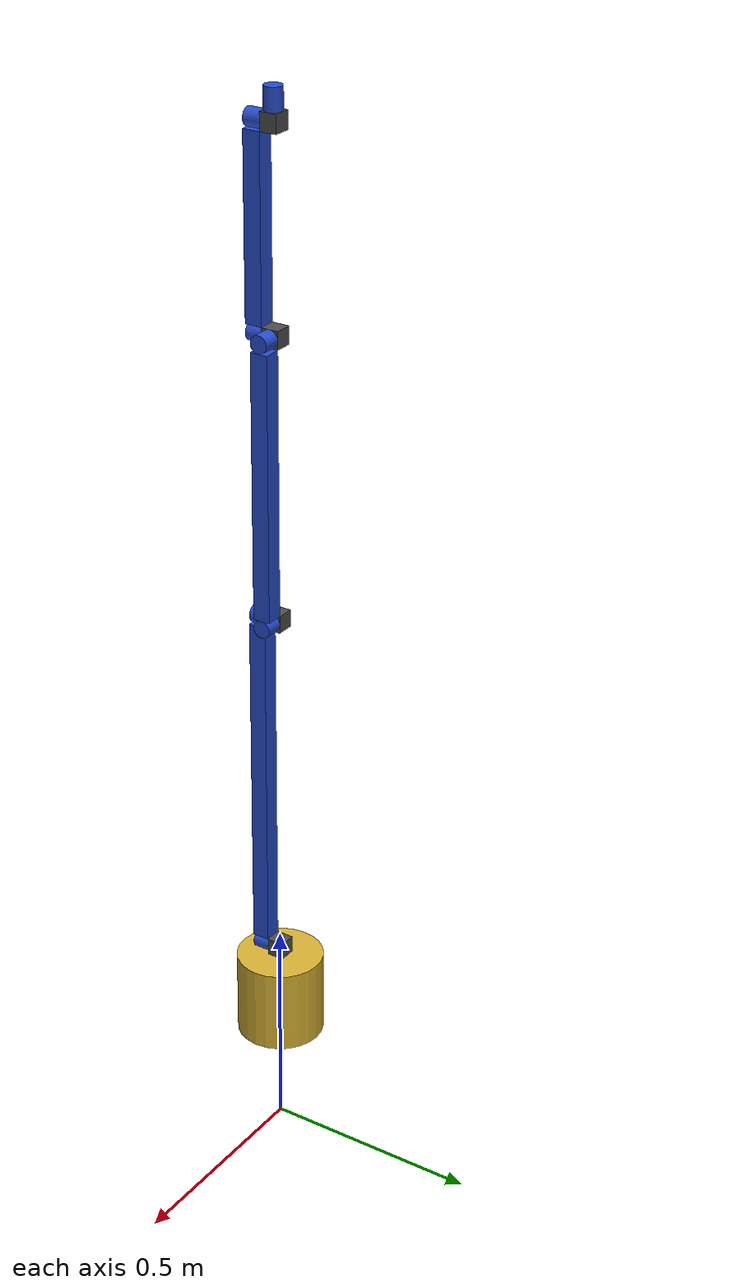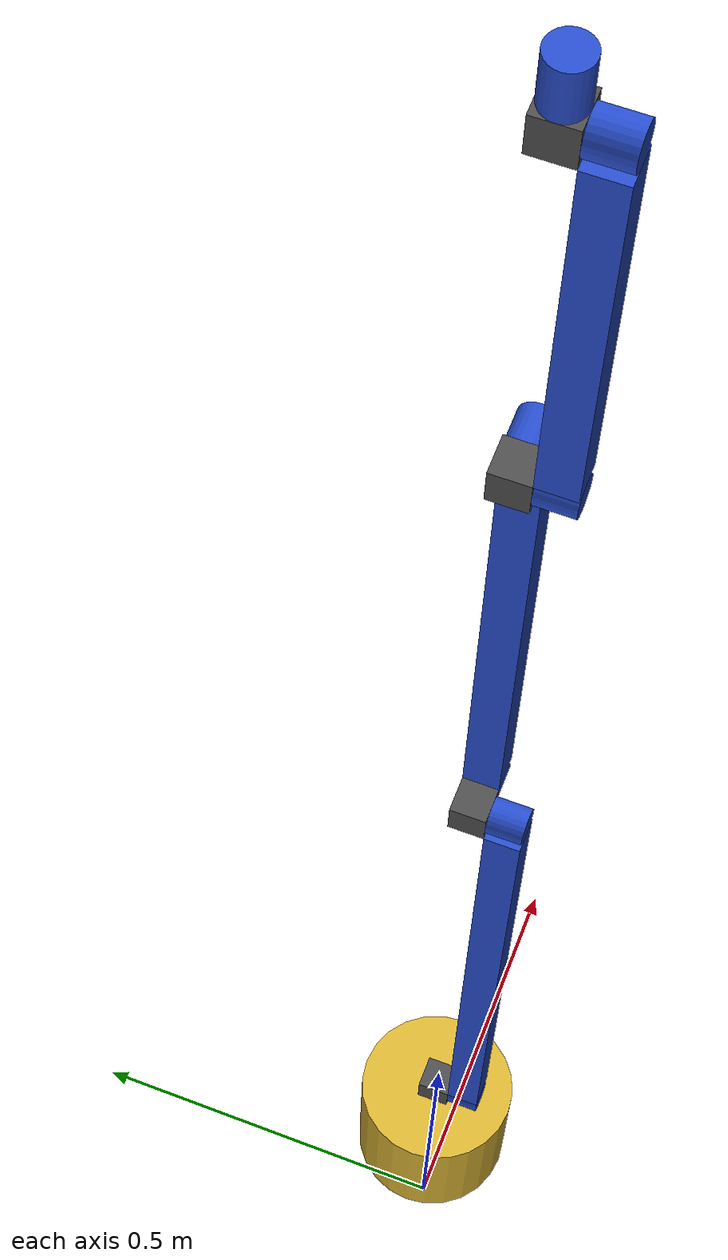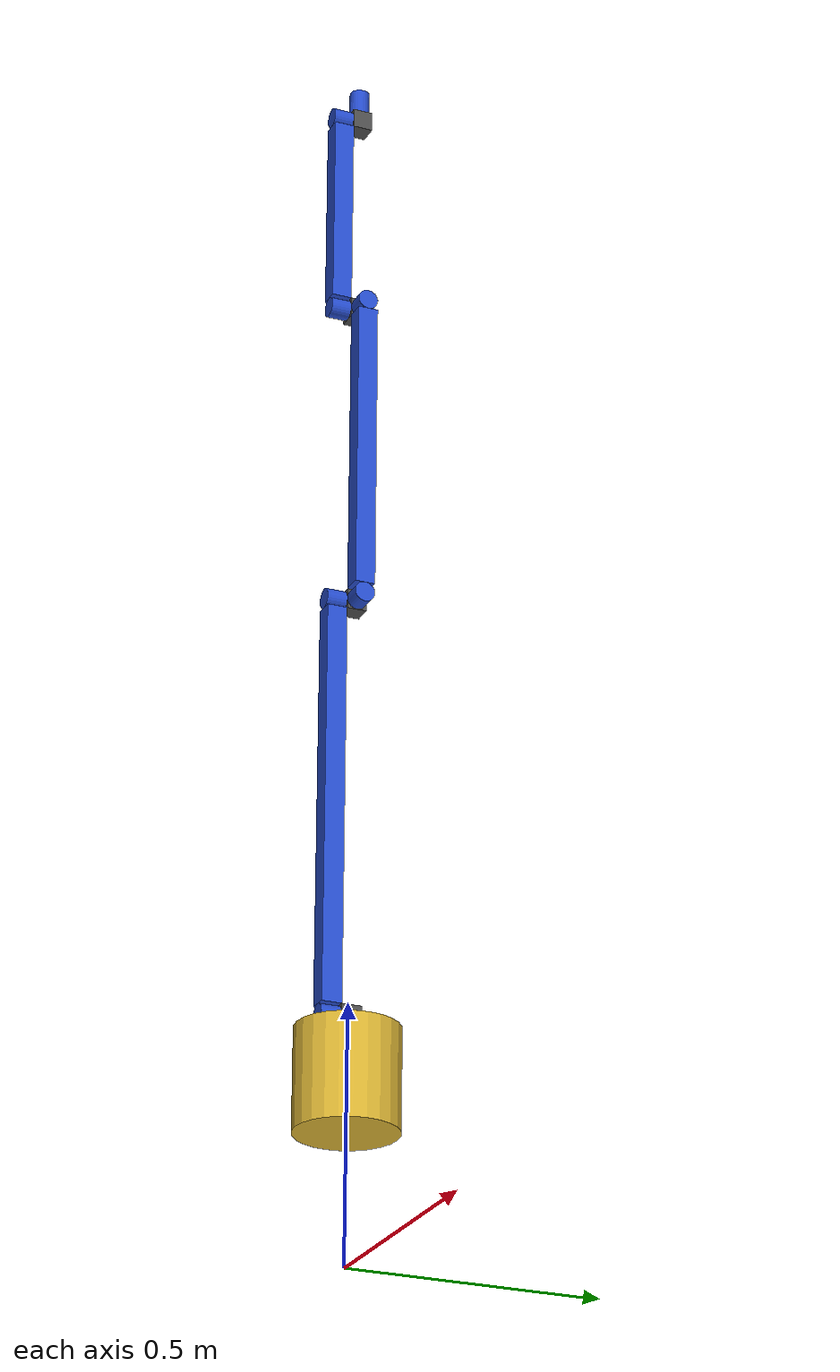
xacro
<?xml version="1.0"?>
<robot name="simplearm" xmlns:xacro="http://www.ros.org/wiki/xacro">
  <xacro:include filename="$(find schunk_description)/urdf/materials.urdf.xacro" />

  <!-- Base Link -->

  <!-- Used for fixing robot to Gazebo -->
  <link name="world"/>

  <link name="arm_base_link">
   <visual>
      <geometry>
        <cylinder length="0.2" radius="0.1"/>
      </geometry>
      <origin rpy="0 0 0" xyz="0 0 0"/>
      <material name="Schunk/DarkGolden"/>
    </visual>
    <collision>
      <geometry>
        <cylinder length="0.2" radius="0.1"/>
      </geometry>
    </collision>
    <inertial>
      <mass value="0.01"/>
      <origin rpy="0 0 0" xyz="0 0 0"/>
      <inertia ixx="0.001" ixy="0.0" ixz="0.0" iyy="0.001" iyz="0.0" izz="0.001"/>
    </inertial>
  </link>

  <!-- joint between base_link and lwa4p_extended_connector_link -->
  <joint name="arm_base_joint" type="fixed">
    <origin rpy="0 0 0" xyz="0 0 0.35"/>
    <parent link="world"/>
    <child link="arm_base_link"/>
  </joint>

  <!-- link 1 -->
  <link name="arm_1_link">
   <visual>
      <geometry>
        <box size="0.04 0.04 0.04"/>
      </geometry>
      <origin rpy="0 0 0" xyz="0 0 0"/>
      <material name="Schunk/DarkGrey"/>
    </visual>
    <collision>
      <geometry>
        <box size="0.04 0.04 0.04"/>
      </geometry>
    </collision>
    <inertial>
      <mass value="0.01"/>
      <origin rpy="0 0 0" xyz="0 0 0"/>
      <inertia ixx="0.001" ixy="0.0" ixz="0.0" iyy="0.001" iyz="0.0" izz="0.001"/>
    </inertial>

  </link>

  <!-- joint 1 between base_link and arm_1_link -->
  <joint name="arm_1_joint" type="revolute">
    <origin rpy="0 0 0" xyz="0 0 0.12"/>
    <parent link="arm_base_link"/>
    <child link="arm_1_link"/>
    <axis xyz="0 0 1"/>
    <limit effort="370" lower="-3.14" upper="3.14" velocity="1.26"/>
  </joint>

  <!-- link 2 -->
  <link name="arm_2_link">
   <visual>
      <geometry>
        <cylinder length="0.04" radius="0.02"/>
      </geometry>
      <origin rpy="1.57075 0 0" xyz="0 0 0"/>
      <material name="Schunk/Blue"/>
    </visual>
    <collision>
      <geometry>
        <cylinder length="0.04" radius="0.02"/>
      </geometry>
    </collision>
    <inertial>
      <mass value="0.01"/>
      <origin rpy="1.57075 0 0" xyz="0 0 0"/>
      <inertia ixx="0.001" ixy="0.0" ixz="0.0" iyy="0.001" iyz="0.0" izz="0.001"/>
    </inertial>

    <visual>
      <origin rpy="0 0 0" xyz="0 0 0.42"/>
      <geometry>
        <box size="0.04 0.04 0.8"/>
      </geometry>
      <material name="Schunk/Blue"/>
    </visual>
    <collision>
      <origin rpy="0 0 0" xyz="0 0 0.42"/>
      <geometry>
        <box size="0.04 0.04 0.6"/>
      </geometry>
    </collision>
   <inertial>
      <mass value="0.01"/>
      <origin rpy="0 0 0" xyz="0 0 0.42"/>
      <inertia ixx="0.001" ixy="0.0" ixz="0.0" iyy="0.001" iyz="0.0" izz="0.001"/>
    </inertial>

   <visual>
      <geometry>
        <cylinder length="0.04" radius="0.02"/>
      </geometry>
      <origin rpy="1.5707 0 0" xyz="0 0 0.84"/>
      <material name="Schunk/Blue"/>
    </visual>
    <collision>
      <geometry>
        <cylinder length="0.04" radius="0.02"/>
      </geometry>
    </collision>
    <inertial>
      <mass value="0.01"/>
      <origin rpy="0 1.5707 0" xyz="0 0 0.84"/>
      <inertia ixx="0.001" ixy="0.0" ixz="0.0" iyy="0.001" iyz="0.0" izz="0.001"/>
    </inertial>

  </link>
  <!-- joint 2 between arm_1_link and arm_2_link-->
  <joint name="arm_2_joint" type="revolute">
    <origin rpy="0 0 0" xyz="0 -0.04 0"/>
    <parent link="arm_1_link"/>
    <child link="arm_2_link"/>
    <axis xyz="0 1 0"/>
    <limit effort="370" lower="-1.57" upper="1.57" velocity="1.26"/>
    <safety_controller k_position="20" k_velocity="50" soft_lower_limit="${-6.28 + 0.01}" soft_upper_limit="${6.28 - 0.01}" />
  </joint>

  <!-- link 3 -->
  <link name="arm_3_link">
   <visual>
      <geometry>
        <box size="0.04 0.04 0.04"/>
      </geometry>
      <origin rpy="0 0 0" xyz="0 0 0"/>
      <material name="Schunk/DarkGrey"/>
    </visual>
    <collision>
      <geometry>
        <box size="0.04 0.04 0.04"/>
      </geometry>
    </collision>
    <inertial>
      <mass value="0.01"/>
      <origin rpy="0 0 0" xyz="0 0 0"/>
      <inertia ixx="0.001" ixy="0.0" ixz="0.0" iyy="0.001" iyz="0.0" izz="0.001"/>
    </inertial>

  </link>
  <!-- joint 3 between link 2 and link3 -->
  <joint name="arm_3_joint" type="revolute">
    <origin rpy="0 0 0" xyz="0 0.04 0.84"/>
    <parent link="arm_2_link"/>
    <child link="arm_3_link"/>
    <axis xyz="0 1 0"/>
    <limit effort="370" lower="-3.14" upper="3.14" velocity="1.26"/>
    <safety_controller k_position="20" k_velocity="50" soft_lower_limit="${-6.28 + 0.01}" soft_upper_limit="${6.28 - 0.01}" />
  </joint>

  <!-- link 4 -->
  <link name="arm_4_link">
   <visual>
      <geometry>
        <cylinder length="0.04" radius="0.02"/>
      </geometry>
      <origin rpy="0 1.57075 0" xyz="0 0 0"/>
      <material name="Schunk/Blue"/>
    </visual>
    <collision>
      <geometry>
        <cylinder length="0.04" radius="0.02"/>
      </geometry>
    </collision>
    <inertial>
      <mass value="0.01"/>
      <origin rpy="0 1.57075 0" xyz="0 0 0"/>
      <inertia ixx="0.001" ixy="0.0" ixz="0.0" iyy="0.001" iyz="0.0" izz="0.001"/>
    </inertial>

    <visual>
      <origin rpy="0 0 0" xyz="0 0 0.32"/>
      <geometry>
        <box size="0.04 0.04 0.6"/>
      </geometry>
      <material name="Schunk/Blue"/>
    </visual>
    <collision>
      <origin rpy="0 0 0" xyz="0 0 0.32"/>
      <geometry>
        <box size="0.04 0.04 0.6"/>
      </geometry>
    </collision>
    <inertial>
      <mass value="0.01"/>
      <origin rpy="0 0 0" xyz="0 0 0.32"/>
      <inertia ixx="0.001" ixy="0.0" ixz="0.0" iyy="0.001" iyz="0.0" izz="0.001"/>
    </inertial>

   <visual>
      <geometry>
        <cylinder length="0.04" radius="0.02"/>
      </geometry>
      <origin rpy="0 1.5707 0" xyz="0 0 0.64"/>
      <material name="Schunk/Blue"/>
    </visual>
    <collision>
      <geometry>
        <cylinder length="0.04" radius="0.02"/>
      </geometry>
    </collision>
    <inertial>
      <mass value="0.01"/>
      <origin rpy="0 1.5707 0" xyz="0 0 0.64"/>
      <inertia ixx="0.001" ixy="0.0" ixz="0.0" iyy="0.001" iyz="0.0" izz="0.001"/>
    </inertial>

  </link>
  <!-- joint 4 between arm_3_link and arm_4_link-->
  <joint name="arm_4_joint" type="revolute">
    <origin rpy="0 0 0" xyz="0.04 0.0 0.0"/>
    <parent link="arm_3_link"/>
    <child link="arm_4_link"/>
    <axis xyz="1 0 0"/>
    <limit effort="370" lower="-3.14" upper="3.14" velocity="1.26"/>
    <safety_controller k_position="20" k_velocity="50" soft_lower_limit="${-6.28 + 0.01}" soft_upper_limit="${6.28 - 0.01}" />
  </joint>

  <!-- link 5 -->
  <link name="arm_5_link">
   <visual>
      <geometry>
        <box size="0.04 0.04 0.04"/>
      </geometry>
      <origin rpy="0 0 0" xyz="0 0 0"/>
      <material name="Schunk/DarkGrey"/>
    </visual>
    <collision>
      <geometry>
        <box size="0.04 0.04 0.04"/>
      </geometry>
    </collision>
    <inertial>
      <mass value="0.01"/>
      <origin rpy="0 0 0" xyz="0 0 0"/>
      <inertia ixx="0.001" ixy="0.0" ixz="0.0" iyy="0.001" iyz="0.0" izz="0.001"/>
    </inertial>

  </link>
  <!-- joint 5 between link 3 and link4 -->
  <joint name="arm_5_joint" type="revolute">
    <origin rpy="0 0 0" xyz="-0.04 0 0.64"/>
    <parent link="arm_4_link"/>
    <child link="arm_5_link"/>
    <axis xyz="1 0 0"/>
    <limit effort="370" lower="-3.14" upper="3.14" velocity="1.26"/>
    <safety_controller k_position="20" k_velocity="50" soft_lower_limit="${-6.28 + 0.01}" soft_upper_limit="${6.28 - 0.01}" />
  </joint>

  <!-- link 6 -->
  <link name="arm_6_link">
   <visual>
      <geometry>
        <cylinder length="0.04" radius="0.02"/>
      </geometry>
      <origin rpy="1.57075 0 0" xyz="0 0 0"/>
      <material name="Schunk/Blue"/>
    </visual>
    <collision>
      <geometry>
        <cylinder length="0.04" radius="0.02"/>
      </geometry>
    </collision>
    <inertial>
      <mass value="0.01"/>
      <origin rpy="1.57075 0 0" xyz="0 0 0"/>
      <inertia ixx="0.001" ixy="0.0" ixz="0.0" iyy="0.001" iyz="0.0" izz="0.001"/>
    </inertial>

    <visual>
      <origin rpy="0 0 0" xyz="0 0 0.22"/>
      <geometry>
        <box size="0.04 0.04 0.4"/>
      </geometry>
      <material name="Schunk/Blue"/>
    </visual>
    <collision>
      <origin rpy="0 0 0" xyz="0 0 0.22"/>
      <geometry>
        <box size="0.04 0.04 0.4"/>
      </geometry>
    </collision>
    <inertial>
      <mass value="0.01"/>
      <origin rpy="0 0 0" xyz="0 0 0.22"/>
      <inertia ixx="0.001" ixy="0.0" ixz="0.0" iyy="0.001" iyz="0.0" izz="0.001"/>
    </inertial>

   <visual>
      <geometry>
        <cylinder length="0.04" radius="0.02"/>
      </geometry>
      <origin rpy="1.5707 0 0" xyz="0 0 0.44"/>
      <material name="Schunk/Blue"/>
    </visual>
    <collision>
      <geometry>
        <cylinder length="0.04" radius="0.02"/>
      </geometry>
    </collision>
    <inertial>
      <mass value="0.01"/>
      <origin rpy="1.5707 0 0" xyz="0 0 0.44"/>
      <inertia ixx="0.001" ixy="0.0" ixz="0.0" iyy="0.001" iyz="0.0" izz="0.001"/>
    </inertial>

  </link>
  <!-- joint 6 between arm_5_link and arm_6_link-->
  <joint name="arm_6_joint" type="revolute">
    <origin rpy="0 0 0" xyz="0 -0.04 0.0"/>
    <parent link="arm_5_link"/>
    <child link="arm_6_link"/>
    <axis xyz="0 1 0"/>
    <limit effort="370" lower="-3.14" upper="3.14" velocity="1.26"/>
    <safety_controller k_position="20" k_velocity="50" soft_lower_limit="${-6.28 + 0.01}" soft_upper_limit="${6.28 - 0.01}" />
  </joint>

  <!-- link 7 -->
  <link name="arm_7_link">
   <visual>
      <geometry>
        <box size="0.04 0.04 0.04"/>
      </geometry>
      <origin rpy="0 0 0" xyz="0 0 0"/>
      <material name="Schunk/DarkGrey"/>
    </visual>
    <collision>
      <geometry>
        <box size="0.04 0.04 0.04"/>
      </geometry>
    </collision>
    <inertial>
      <mass value="0.01"/>
      <origin rpy="0 0 0" xyz="0 0 0"/>
      <inertia ixx="0.001" ixy="0.0" ixz="0.0" iyy="0.001" iyz="0.0" izz="0.001"/>
    </inertial>

  </link>
  <!-- joint 7 between link 3 and link4 -->
  <joint name="arm_7_joint" type="revolute">
    <origin rpy="0 0 0" xyz="0 0.04 0.44"/>
    <parent link="arm_6_link"/>
    <child link="arm_7_link"/>
    <axis xyz="0 1 0"/>
    <limit effort="370" lower="-3.14" upper="3.14" velocity="1.26"/>
    <safety_controller k_position="20" k_velocity="50" soft_lower_limit="${-6.28 + 0.01}" soft_upper_limit="${6.28 - 0.01}" />
  </joint>

  <!-- link 8 ee -->
  <link name="arm_8_link">
   <visual>
      <geometry>
        <cylinder length="0.06" radius="0.02"/>
      </geometry>
      <origin rpy="0 0 0" xyz="0 0 0"/>
      <material name="Schunk/Blue"/>
    </visual>
    <collision>
      <geometry>
        <cylinder length="0.04" radius="0.02"/>
      </geometry>
    </collision>
    <inertial>
      <mass value="0.01"/>
      <origin rpy="0 0 0" xyz="0 0 0"/>
      <inertia ixx="0.001" ixy="0.0" ixz="0.0" iyy="0.001" iyz="0.0" izz="0.001"/>
    </inertial>
  </link>

  <!-- joint 8 ee between arm_7_link and arm_8_link-->
  <joint name="arm_8_joint" type="revolute">
    <origin rpy="0 0 0" xyz="0 0.0 0.04"/>
    <parent link="arm_7_link"/>
    <child link="arm_8_link"/>
    <axis xyz="0 0 1"/>
    <limit effort="370" lower="-0.7" upper="0.7" velocity="1.26"/>
    <safety_controller k_position="20" k_velocity="50" soft_lower_limit="${-6.28 + 0.01}" soft_upper_limit="${6.28 - 0.01}" />
  </joint>

</robot>
